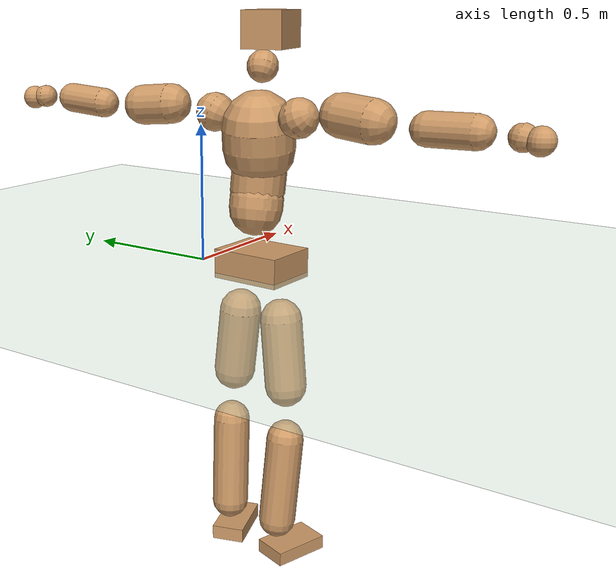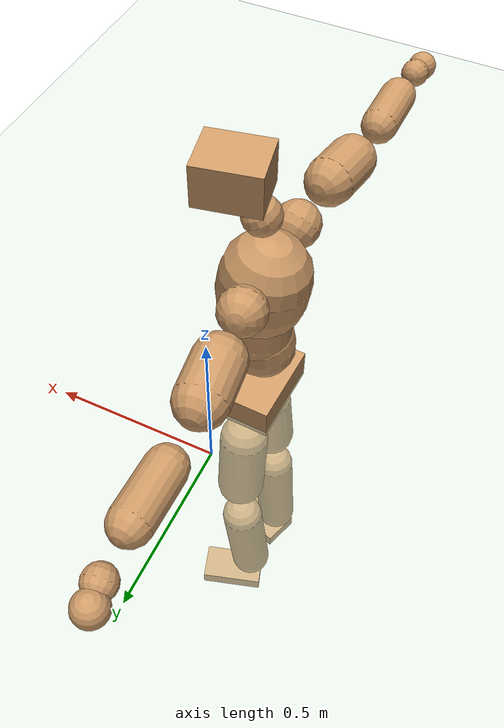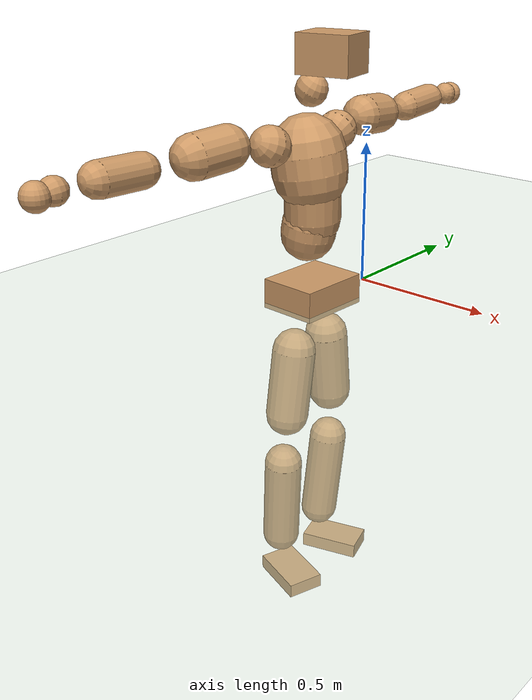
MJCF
<mujoco model="humanoid">
  <compiler coordinate="local" angle="radian"/>
  <default>
    <joint damping="0.0" armature="0.01" stiffness="0.0" limited="true"/>
    <geom conaffinity="1" condim="3" contype="7" margin="0.001" rgba="0.8 0.6 .4 1"/>
  </default>
  <asset>
    <texture type="skybox" builtin="gradient" rgb1=".4 .5 .6" rgb2="0 0 0" width="100" height="100"/>
    <texture builtin="flat" height="1278" mark="cross" markrgb="1 1 1" name="texgeom" random="0.01" rgb1="0.8 0.6 0.4" rgb2="0.8 0.6 0.4" type="cube" width="127"/>
    <texture builtin="checker" height="100" name="texplane" rgb1="0 0 0" rgb2="0.8 0.8 0.8" type="2d" width="100"/>
    <material name="MatPlane" reflectance="0.5" shininess="1" specular="1" texrepeat="60 60" texture="texplane"/>
    <material name="geom" texture="texgeom" texuniform="true"/>
  </asset>
  <worldbody>
    <light cutoff="100" diffuse="1 1 1" dir="-0 0 -1.3" directional="true" exponent="1" pos="0 0 1.3" specular=".1 .1 .1"/>
    <geom conaffinity="1" condim="3" name="floor" pos="0 0 0" rgba="0.8 0.9 0.8 1" size="100 100 .2" type="plane" material="MatPlane"/>
    <body name="Pelvis" pos="0.0016 -0.27 0.0416">
      <freejoint name="Pelvis"/>
      <geom type="box" contype="1" conaffinity="1" density="5359.375718" pos="-0.0142 0.0005 -0.0093" size="0.1035 0.1294 0.0524" quat="0.9998 0.0000 0.0000 -0.0188" name="Pelvis"/>
      <body name="L_Hip" pos="-0.0187 0.0747 -0.0928">
        <joint name="L_Hip_x" type="hinge" pos="0 0 0" axis="1 0 0" stiffness="1600" damping="160" armature="0.02" range="-180.0000 180.0000"/>
        <joint name="L_Hip_y" type="hinge" pos="0 0 0" axis="0 1 0" stiffness="1600" damping="160" armature="0.02" range="-180.0000 180.0000"/>
        <joint name="L_Hip_z" type="hinge" pos="0 0 0" axis="0 0 1" stiffness="1600" damping="160" armature="0.02" range="-180.0000 180.0000"/>
        <geom type="capsule" contype="1" conaffinity="1" density="2040.816327" size="0.0756" fromto="-0.0005 0.0118 -0.1050 -0.0018 0.0386 -0.3427" name="L_Hip"/>
        <body name="L_Knee" pos="-0.0023 0.0504 -0.4476">
          <joint name="L_Knee_x" type="hinge" pos="0 0 0" axis="1 0 0" stiffness="1600" damping="160" armature="0.02" range="-180.0000 180.0000"/>
          <joint name="L_Knee_y" type="hinge" pos="0 0 0" axis="0 1 0" stiffness="1600" damping="160" armature="0.02" range="-180.0000 180.0000"/>
          <joint name="L_Knee_z" type="hinge" pos="0 0 0" axis="0 0 1" stiffness="1600" damping="160" armature="0.02" range="-180.0000 180.0000"/>
          <geom type="capsule" contype="1" conaffinity="1" density="1234.567901" size="0.0682" fromto="-0.0088 -0.0037 -0.0977 -0.0381 -0.0159 -0.4238" name="L_Knee"/>
          <body name="L_Ankle" pos="-0.0469 -0.0196 -0.5215">
            <joint name="L_Ankle_x" type="hinge" pos="0 0 0" axis="1 0 0" stiffness="1600" damping="160" armature="0.02" range="-180.0000 180.0000"/>
            <joint name="L_Ankle_y" type="hinge" pos="0 0 0" axis="0 1 0" stiffness="1600" damping="160" armature="0.02" range="-180.0000 180.0000"/>
            <joint name="L_Ankle_z" type="hinge" pos="0 0 0" axis="0 0 1" stiffness="1600" damping="160" armature="0.02" range="-180.0000 180.0000"/>
            <geom type="box" contype="1" conaffinity="1" density="999.99999" pos="0.0725 0.0228 -0.0363" size="0.1063 0.06 0.0265" quat="0.9884 0.0000 0.0000 0.1520" name="L_Ankle"/>
            <body name="L_Toe" pos="0.1449 0.0457 -0.0727">
              <joint name="L_Toe_x" type="hinge" pos="0 0 0" axis="1 0 0" stiffness="1000" damping="100" armature="0.02" range="-180.0000 180.0000"/>
              <joint name="L_Toe_y" type="hinge" pos="0 0 0" axis="0 1 0" stiffness="1000" damping="100" armature="0.02" range="-180.0000 180.0000"/>
              <joint name="L_Toe_z" type="hinge" pos="0 0 0" axis="0 0 1" stiffness="1000" damping="100" armature="0.02" range="-180.0000 180.0000"/>
              <geom type="box" contype="1" conaffinity="1" density="8581287.725829" pos="0.0000 0.0000 0.0371" size="0.0012 0.0029 0.0014" quat="0.9877 0.0000 0.0000 0.1562" name="L_Toe"/>
            </body>
          </body>
        </body>
      </body>
      <body name="R_Hip" pos="-0.0161 -0.077 -0.0999">
        <joint name="R_Hip_x" type="hinge" pos="0 0 0" axis="1 0 0" stiffness="1600" damping="160" armature="0.02" range="-180.0000 180.0000"/>
        <joint name="R_Hip_y" type="hinge" pos="0 0 0" axis="0 1 0" stiffness="1600" damping="160" armature="0.02" range="-180.0000 180.0000"/>
        <joint name="R_Hip_z" type="hinge" pos="0 0 0" axis="0 0 1" stiffness="1600" damping="160" armature="0.02" range="-180.0000 180.0000"/>
        <geom type="capsule" contype="1" conaffinity="1" density="2040.816327" size="0.075" fromto="-0.0035 -0.0121 -0.1043 -0.0118 -0.0405 -0.3490" name="R_Hip"/>
        <body name="R_Knee" pos="-0.0153 -0.0525 -0.4532">
          <joint name="R_Knee_x" type="hinge" pos="0 0 0" axis="1 0 0" stiffness="1600" damping="160" armature="0.02" range="-180.0000 180.0000"/>
          <joint name="R_Knee_y" type="hinge" pos="0 0 0" axis="0 1 0" stiffness="1600" damping="160" armature="0.02" range="-180.0000 180.0000"/>
          <joint name="R_Knee_z" type="hinge" pos="0 0 0" axis="0 0 1" stiffness="1600" damping="160" armature="0.02" range="-180.0000 180.0000"/>
          <geom type="capsule" contype="1" conaffinity="1" density="1234.567901" size="0.0675" fromto="-0.0078 0.0044 -0.0971 -0.0338 0.0193 -0.4209" name="R_Knee"/>
          <body name="R_Ankle" pos="-0.0416 0.0237 -0.518">
            <joint name="R_Ankle_x" type="hinge" pos="0 0 0" axis="1 0 0" stiffness="1600" damping="160" armature="0.02" range="-180.0000 180.0000"/>
            <joint name="R_Ankle_y" type="hinge" pos="0 0 0" axis="0 1 0" stiffness="1600" damping="160" armature="0.02" range="-180.0000 180.0000"/>
            <joint name="R_Ankle_z" type="hinge" pos="0 0 0" axis="0 0 1" stiffness="1600" damping="160" armature="0.02" range="-180.0000 180.0000"/>
            <geom type="box" contype="1" conaffinity="1" density="1000.000029" pos="0.0761 -0.0250 -0.0394" size="0.1052 0.0648 0.0257" quat="0.9875 0.0000 0.0000 -0.1577" name="R_Ankle"/>
            <body name="R_Toe" pos="0.1523 -0.0499 -0.0787">
              <joint name="R_Toe_x" type="hinge" pos="0 0 0" axis="1 0 0" stiffness="1000" damping="100" armature="0.02" range="-180.0000 180.0000"/>
              <joint name="R_Toe_y" type="hinge" pos="0 0 0" axis="0 1 0" stiffness="1000" damping="100" armature="0.02" range="-180.0000 180.0000"/>
              <joint name="R_Toe_z" type="hinge" pos="0 0 0" axis="0 0 1" stiffness="1000" damping="100" armature="0.02" range="-180.0000 180.0000"/>
              <geom type="box" contype="1" conaffinity="1" density="8087949.106147" pos="0.0000 0.0000 0.0413" size="0.0013 0.003 0.0014" quat="0.9887 0.0000 0.0000 -0.1500" name="R_Toe"/>
            </body>
          </body>
        </body>
      </body>
      <body name="Torso" pos="-0.0507 0.0055 0.137">
        <joint name="Torso_x" type="hinge" pos="0 0 0" axis="1 0 0" stiffness="2000" damping="200" armature="0.02" range="-180.0000 180.0000"/>
        <joint name="Torso_y" type="hinge" pos="0 0 0" axis="0 1 0" stiffness="2000" damping="200" armature="0.02" range="-180.0000 180.0000"/>
        <joint name="Torso_z" type="hinge" pos="0 0 0" axis="0 0 1" stiffness="2000" damping="200" armature="0.02" range="-180.0000 180.0000"/>
        <geom type="capsule" contype="1" conaffinity="1" density="2040.816327" size="0.0942" fromto="0.0175 0.0019 0.0926 0.0102 0.0011 0.0538" name="Torso"/>
        <body name="Spine" pos="0.0277 0.0031 0.1464">
          <joint name="Spine_x" type="hinge" pos="0 0 0" axis="1 0 0" stiffness="2000" damping="200" armature="0.02" range="-180.0000 180.0000"/>
          <joint name="Spine_y" type="hinge" pos="0 0 0" axis="0 1 0" stiffness="2000" damping="200" armature="0.02" range="-180.0000 180.0000"/>
          <joint name="Spine_z" type="hinge" pos="0 0 0" axis="0 0 1" stiffness="2000" damping="200" armature="0.02" range="-180.0000 180.0000"/>
          <geom type="capsule" contype="1" conaffinity="1" density="2040.816327" size="0.0962" fromto="0.0045 -0.0072 0.0958 -0.0016 0.0026 -0.0344" name="Spine"/>
          <body name="Chest" pos="0.0029 -0.0046 0.0614">
            <joint name="Chest_x" type="hinge" pos="0 0 0" axis="1 0 0" stiffness="2000" damping="200" armature="0.02" range="-180.0000 180.0000"/>
            <joint name="Chest_y" type="hinge" pos="0 0 0" axis="0 1 0" stiffness="2000" damping="200" armature="0.02" range="-180.0000 180.0000"/>
            <joint name="Chest_z" type="hinge" pos="0 0 0" axis="0 0 1" stiffness="2000" damping="200" armature="0.02" range="-180.0000 180.0000"/>
            <geom type="capsule" contype="1" conaffinity="1" density="2040.816327" size="0.127" fromto="-0.0177 -0.0066 0.1256 -0.0081 -0.0030 0.0571" name="Chest"/>
            <body name="Neck" pos="-0.0346 -0.0157 0.2696">
              <joint name="Neck_x" type="hinge" pos="0 0 0" axis="1 0 0" stiffness="1000" damping="100" armature="0.02" range="-180.0000 180.0000"/>
              <joint name="Neck_y" type="hinge" pos="0 0 0" axis="0 1 0" stiffness="1000" damping="100" armature="0.02" range="-180.0000 180.0000"/>
              <joint name="Neck_z" type="hinge" pos="0 0 0" axis="0 0 1" stiffness="1000" damping="100" armature="0.02" range="-180.0000 180.0000"/>
              <geom type="capsule" contype="1" conaffinity="1" density="1000" size="0.0538" fromto="0.0338 0.0060 0.0572 0.0348 0.0062 0.0589" name="Neck"/>
              <body name="Head" pos="0.0685 0.0123 0.116">
                <joint name="Head_x" type="hinge" pos="0 0 0" axis="1 0 0" stiffness="1000" damping="100" armature="0.02" range="-180.0000 180.0000"/>
                <joint name="Head_y" type="hinge" pos="0 0 0" axis="0 1 0" stiffness="1000" damping="100" armature="0.02" range="-180.0000 180.0000"/>
                <joint name="Head_z" type="hinge" pos="0 0 0" axis="0 0 1" stiffness="1000" damping="100" armature="0.02" range="-180.0000 180.0000"/>
                <geom type="box" contype="1" conaffinity="1" density="2249.999975" pos="0.0353 0.0071 0.0590" size="0.0907 0.0727 0.0631" quat="0.9950 0.0000 0.0000 0.0996" name="Head"/>
              </body>
            </body>
            <body name="L_Thorax" pos="-0.018 0.09 0.1398">
              <joint name="L_Thorax_x" type="hinge" pos="0 0 0" axis="1 0 0" stiffness="1000" damping="100" armature="0.02" range="-180.0000 180.0000"/>
              <joint name="L_Thorax_y" type="hinge" pos="0 0 0" axis="0 1 0" stiffness="1000" damping="100" armature="0.02" range="-180.0000 180.0000"/>
              <joint name="L_Thorax_z" type="hinge" pos="0 0 0" axis="0 0 1" stiffness="1000" damping="100" armature="0.02" range="-180.0000 180.0000"/>
              <geom type="capsule" contype="1" conaffinity="1" density="1000" size="0.0673" fromto="-0.0139 0.0736 0.0281 -0.0142 0.0754 0.0288" name="L_Thorax"/>
              <body name="L_Shoulder" pos="-0.0281 0.149 0.0569">
                <joint name="L_Shoulder_x" type="hinge" pos="0 0 0" axis="1 0 0" stiffness="1000" damping="100" armature="0.02" range="-720.0000 720.0000"/>
                <joint name="L_Shoulder_y" type="hinge" pos="0 0 0" axis="0 1 0" stiffness="1000" damping="100" armature="0.02" range="-720.0000 720.0000"/>
                <joint name="L_Shoulder_z" type="hinge" pos="0 0 0" axis="0 0 1" stiffness="1000" damping="100" armature="0.02" range="-720.0000 720.0000"/>
                <geom type="capsule" contype="1" conaffinity="1" density="1000" size="0.0705" fromto="-0.0103 0.0996 -0.0086 -0.0222 0.2152 -0.0185" name="L_Shoulder"/>
                <body name="L_Elbow" pos="-0.0325 0.3148 -0.027">
                  <joint name="L_Elbow_x" type="hinge" pos="0 0 0" axis="1 0 0" stiffness="1000" damping="100" armature="0.02" range="-720.0000 720.0000"/>
                  <joint name="L_Elbow_y" type="hinge" pos="0 0 0" axis="0 1 0" stiffness="1000" damping="100" armature="0.02" range="-720.0000 720.0000"/>
                  <joint name="L_Elbow_z" type="hinge" pos="0 0 0" axis="0 0 1" stiffness="1000" damping="100" armature="0.02" range="-720.0000 720.0000"/>
                  <geom type="capsule" contype="1" conaffinity="1" density="1000" size="0.053" fromto="-0.0005 0.0829 0.0052 -0.0014 0.2371 0.0150" name="L_Elbow"/>
                  <body name="L_Wrist" pos="-0.0019 0.32 0.0202">
                    <joint name="L_Wrist_x" type="hinge" pos="0 0 0" axis="1 0 0" stiffness="600" damping="60" armature="0.02" range="-180.0000 180.0000"/>
                    <joint name="L_Wrist_y" type="hinge" pos="0 0 0" axis="0 1 0" stiffness="600" damping="60" armature="0.02" range="-180.0000 180.0000"/>
                    <joint name="L_Wrist_z" type="hinge" pos="0 0 0" axis="0 0 1" stiffness="600" damping="60" armature="0.02" range="-180.0000 180.0000"/>
                    <geom type="capsule" contype="1" conaffinity="1" density="1000" size="0.0407" fromto="-0.0091 0.0505 -0.0064 -0.0095 0.0525 -0.0066" name="L_Wrist"/>
                    <body name="L_Hand" pos="-0.0186 0.103 -0.013">
                      <joint name="L_Hand_x" type="hinge" pos="0 0 0" axis="1 0 0" stiffness="600" damping="60" armature="0.02" range="-180.0000 180.0000"/>
                      <joint name="L_Hand_y" type="hinge" pos="0 0 0" axis="0 1 0" stiffness="600" damping="60" armature="0.02" range="-180.0000 180.0000"/>
                      <joint name="L_Hand_z" type="hinge" pos="0 0 0" axis="0 0 1" stiffness="600" damping="60" armature="0.02" range="-180.0000 180.0000"/>
                      <geom type="sphere" contype="1" conaffinity="1" density="1000" size="0.0424" pos="0.0000 0.0000 0.0000" name="L_Hand"/>
                    </body>
                  </body>
                </body>
              </body>
            </body>
            <body name="R_Thorax" pos="-0.0248 -0.103 0.1385">
              <joint name="R_Thorax_x" type="hinge" pos="0 0 0" axis="1 0 0" stiffness="1000" damping="100" armature="0.02" range="-180.0000 180.0000"/>
              <joint name="R_Thorax_y" type="hinge" pos="0 0 0" axis="0 1 0" stiffness="1000" damping="100" armature="0.02" range="-180.0000 180.0000"/>
              <joint name="R_Thorax_z" type="hinge" pos="0 0 0" axis="0 0 1" stiffness="1000" damping="100" armature="0.02" range="-180.0000 180.0000"/>
              <geom type="capsule" contype="1" conaffinity="1" density="1000" size="0.0676" fromto="-0.0065 -0.0690 0.0310 -0.0067 -0.0708 0.0318" name="R_Thorax"/>
              <body name="R_Shoulder" pos="-0.0132 -0.1397 0.0627">
                <joint name="R_Shoulder_x" type="hinge" pos="0 0 0" axis="1 0 0" stiffness="1000" damping="100" armature="0.02" range="-720.0000 720.0000"/>
                <joint name="R_Shoulder_y" type="hinge" pos="0 0 0" axis="0 1 0" stiffness="1000" damping="100" armature="0.02" range="-720.0000 720.0000"/>
                <joint name="R_Shoulder_z" type="hinge" pos="0 0 0" axis="0 0 1" stiffness="1000" damping="100" armature="0.02" range="-720.0000 720.0000"/>
                <geom type="capsule" contype="1" conaffinity="1" density="1000" size="0.0721" fromto="-0.0141 -0.1008 -0.0080 -0.0312 -0.2237 -0.0177" name="R_Shoulder"/>
                <body name="R_Elbow" pos="-0.0453 -0.3245 -0.0257">
                  <joint name="R_Elbow_x" type="hinge" pos="0 0 0" axis="1 0 0" stiffness="1000" damping="100" armature="0.02" range="-720.0000 720.0000"/>
                  <joint name="R_Elbow_y" type="hinge" pos="0 0 0" axis="0 1 0" stiffness="1000" damping="100" armature="0.02" range="-720.0000 720.0000"/>
                  <joint name="R_Elbow_z" type="hinge" pos="0 0 0" axis="0 0 1" stiffness="1000" damping="100" armature="0.02" range="-720.0000 720.0000"/>
                  <geom type="capsule" contype="1" conaffinity="1" density="1000" size="0.0543" fromto="-0.0012 -0.0842 0.0019 -0.0035 -0.2393 0.0053" name="R_Elbow"/>
                  <body name="R_Wrist" pos="-0.0048 -0.3236 0.0071">
                    <joint name="R_Wrist_x" type="hinge" pos="0 0 0" axis="1 0 0" stiffness="600" damping="60" armature="0.02" range="-180.0000 180.0000"/>
                    <joint name="R_Wrist_y" type="hinge" pos="0 0 0" axis="0 1 0" stiffness="600" damping="60" armature="0.02" range="-180.0000 180.0000"/>
                    <joint name="R_Wrist_z" type="hinge" pos="0 0 0" axis="0 0 1" stiffness="600" damping="60" armature="0.02" range="-180.0000 180.0000"/>
                    <geom type="capsule" contype="1" conaffinity="1" density="1000" size="0.0419" fromto="-0.0059 -0.0520 -0.0053 -0.0061 -0.0540 -0.0055" name="R_Wrist"/>
                    <body name="R_Hand" pos="-0.012 -0.106 -0.0108">
                      <joint name="R_Hand_x" type="hinge" pos="0 0 0" axis="1 0 0" stiffness="600" damping="60" armature="0.02" range="-180.0000 180.0000"/>
                      <joint name="R_Hand_y" type="hinge" pos="0 0 0" axis="0 1 0" stiffness="600" damping="60" armature="0.02" range="-180.0000 180.0000"/>
                      <joint name="R_Hand_z" type="hinge" pos="0 0 0" axis="0 0 1" stiffness="600" damping="60" armature="0.02" range="-180.0000 180.0000"/>
                      <geom type="sphere" contype="1" conaffinity="1" density="1000" size="0.0432" pos="0.0000 0.0000 0.0000" name="R_Hand"/>
                    </body>
                  </body>
                </body>
              </body>
            </body>
          </body>
        </body>
      </body>
    </body>
  </worldbody>
  <actuator>
    <motor name="L_Hip_x" joint="L_Hip_x" gear="500"/>
    <motor name="L_Hip_y" joint="L_Hip_y" gear="500"/>
    <motor name="L_Hip_z" joint="L_Hip_z" gear="500"/>
    <motor name="L_Knee_x" joint="L_Knee_x" gear="500"/>
    <motor name="L_Knee_y" joint="L_Knee_y" gear="500"/>
    <motor name="L_Knee_z" joint="L_Knee_z" gear="500"/>
    <motor name="L_Ankle_x" joint="L_Ankle_x" gear="500"/>
    <motor name="L_Ankle_y" joint="L_Ankle_y" gear="500"/>
    <motor name="L_Ankle_z" joint="L_Ankle_z" gear="500"/>
    <motor name="L_Toe_x" joint="L_Toe_x" gear="500"/>
    <motor name="L_Toe_y" joint="L_Toe_y" gear="500"/>
    <motor name="L_Toe_z" joint="L_Toe_z" gear="500"/>
    <motor name="R_Hip_x" joint="R_Hip_x" gear="500"/>
    <motor name="R_Hip_y" joint="R_Hip_y" gear="500"/>
    <motor name="R_Hip_z" joint="R_Hip_z" gear="500"/>
    <motor name="R_Knee_x" joint="R_Knee_x" gear="500"/>
    <motor name="R_Knee_y" joint="R_Knee_y" gear="500"/>
    <motor name="R_Knee_z" joint="R_Knee_z" gear="500"/>
    <motor name="R_Ankle_x" joint="R_Ankle_x" gear="500"/>
    <motor name="R_Ankle_y" joint="R_Ankle_y" gear="500"/>
    <motor name="R_Ankle_z" joint="R_Ankle_z" gear="500"/>
    <motor name="R_Toe_x" joint="R_Toe_x" gear="500"/>
    <motor name="R_Toe_y" joint="R_Toe_y" gear="500"/>
    <motor name="R_Toe_z" joint="R_Toe_z" gear="500"/>
    <motor name="Torso_x" joint="Torso_x" gear="500"/>
    <motor name="Torso_y" joint="Torso_y" gear="500"/>
    <motor name="Torso_z" joint="Torso_z" gear="500"/>
    <motor name="Spine_x" joint="Spine_x" gear="500"/>
    <motor name="Spine_y" joint="Spine_y" gear="500"/>
    <motor name="Spine_z" joint="Spine_z" gear="500"/>
    <motor name="Chest_x" joint="Chest_x" gear="500"/>
    <motor name="Chest_y" joint="Chest_y" gear="500"/>
    <motor name="Chest_z" joint="Chest_z" gear="500"/>
    <motor name="Neck_x" joint="Neck_x" gear="500"/>
    <motor name="Neck_y" joint="Neck_y" gear="500"/>
    <motor name="Neck_z" joint="Neck_z" gear="500"/>
    <motor name="Head_x" joint="Head_x" gear="500"/>
    <motor name="Head_y" joint="Head_y" gear="500"/>
    <motor name="Head_z" joint="Head_z" gear="500"/>
    <motor name="L_Thorax_x" joint="L_Thorax_x" gear="500"/>
    <motor name="L_Thorax_y" joint="L_Thorax_y" gear="500"/>
    <motor name="L_Thorax_z" joint="L_Thorax_z" gear="500"/>
    <motor name="L_Shoulder_x" joint="L_Shoulder_x" gear="500"/>
    <motor name="L_Shoulder_y" joint="L_Shoulder_y" gear="500"/>
    <motor name="L_Shoulder_z" joint="L_Shoulder_z" gear="500"/>
    <motor name="L_Elbow_x" joint="L_Elbow_x" gear="500"/>
    <motor name="L_Elbow_y" joint="L_Elbow_y" gear="500"/>
    <motor name="L_Elbow_z" joint="L_Elbow_z" gear="500"/>
    <motor name="L_Wrist_x" joint="L_Wrist_x" gear="500"/>
    <motor name="L_Wrist_y" joint="L_Wrist_y" gear="500"/>
    <motor name="L_Wrist_z" joint="L_Wrist_z" gear="500"/>
    <motor name="L_Hand_x" joint="L_Hand_x" gear="500"/>
    <motor name="L_Hand_y" joint="L_Hand_y" gear="500"/>
    <motor name="L_Hand_z" joint="L_Hand_z" gear="500"/>
    <motor name="R_Thorax_x" joint="R_Thorax_x" gear="500"/>
    <motor name="R_Thorax_y" joint="R_Thorax_y" gear="500"/>
    <motor name="R_Thorax_z" joint="R_Thorax_z" gear="500"/>
    <motor name="R_Shoulder_x" joint="R_Shoulder_x" gear="500"/>
    <motor name="R_Shoulder_y" joint="R_Shoulder_y" gear="500"/>
    <motor name="R_Shoulder_z" joint="R_Shoulder_z" gear="500"/>
    <motor name="R_Elbow_x" joint="R_Elbow_x" gear="500"/>
    <motor name="R_Elbow_y" joint="R_Elbow_y" gear="500"/>
    <motor name="R_Elbow_z" joint="R_Elbow_z" gear="500"/>
    <motor name="R_Wrist_x" joint="R_Wrist_x" gear="500"/>
    <motor name="R_Wrist_y" joint="R_Wrist_y" gear="500"/>
    <motor name="R_Wrist_z" joint="R_Wrist_z" gear="500"/>
    <motor name="R_Hand_x" joint="R_Hand_x" gear="500"/>
    <motor name="R_Hand_y" joint="R_Hand_y" gear="500"/>
    <motor name="R_Hand_z" joint="R_Hand_z" gear="500"/>
  </actuator>
  <contact>
    <exclude body1="Torso" body2="Chest"/>
    <exclude body1="Head" body2="Chest"/>
    <exclude body1="R_Knee" body2="R_Toe"/>
    <exclude body1="R_Knee" body2="L_Ankle"/>
    <exclude body1="R_Knee" body2="L_Toe"/>
    <exclude body1="L_Knee" body2="L_Toe"/>
    <exclude body1="L_Knee" body2="R_Ankle"/>
    <exclude body1="L_Knee" body2="R_Toe"/>
    <exclude body1="L_Shoulder" body2="Chest"/>
    <exclude body1="R_Shoulder" body2="Chest"/>
  </contact>
  <sensor/>
  <size njmax="700" nconmax="700"/>
</mujoco>
